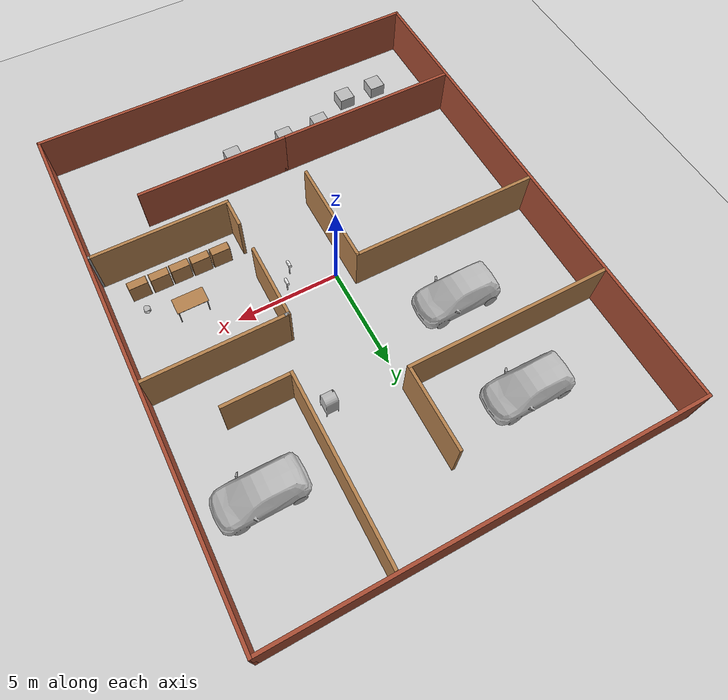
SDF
<sdf version="1.6">
 <world name="default">
  <light name="sun" type="directional">
   <pose>0 0 10 0 -0 0</pose>
   <diffuse>0.8 0.8 0.8 1</diffuse>
   <specular>0.2 0.2 0.2 1</specular>
   <attenuation>
    <range>1000</range>
    <constant>0.9</constant>
    <linear>0.01</linear>
    <quadratic>0.001</quadratic>
   </attenuation>
   <direction>-0.5 0.1 -0.9</direction>
  </light>
  <model name="ground_plane">
   <static>1</static>
   <link name="link">
    <collision name="collision">
     <geometry><plane><normal>0 0 1</normal><size>100 100</size></plane></geometry>
     <surface>
      <contact><collide_bitmask>65535</collide_bitmask></contact>
      <friction><ode><mu>100</mu><mu2>50</mu2></ode></friction>
     </surface>
    </collision>
    <visual name="visual">
     <cast_shadows>0</cast_shadows>
     <geometry><plane><normal>0 0 1</normal><size>100 100</size></plane></geometry>
     <material>
      <script><uri>file://media/materials/scripts/gazebo.material</uri><name>Gazebo/Grey</name></script>
     </material>
    </visual>
   </link>
  </model>
  <gravity>0 0 -9.8</gravity>
  <magnetic_field>6e-06 2.3e-05 -4.2e-05</magnetic_field>
  <atmosphere type="adiabatic"/>
  <physics name="default_physics" default="0" type="ode">
   <max_step_size>0.001</max_step_size>
   <real_time_factor>1</real_time_factor>
   <real_time_update_rate>1000</real_time_update_rate>
  </physics>
  <scene><ambient>0.4 0.4 0.4 1</ambient><background>0.7 0.7 0.7 1</background><shadows>1</shadows></scene>
  <audio><device>default</device></audio>
  <spherical_coordinates>
   <surface_model>EARTH_WGS84</surface_model>
   <latitude_deg>0</latitude_deg>
   <longitude_deg>0</longitude_deg>
   <elevation>0</elevation>
   <heading_deg>0</heading_deg>
  </spherical_coordinates>
  <model name="Condominium">
   <model name="kindacondo">
    <model name="Mailbox">
     <link name="link">
      <collision name="collision">
       <geometry><mesh><uri>model://mailbox/meshes/mailbox.dae</uri></mesh></geometry>
      </collision>
      <visual name="visual">
       <geometry><mesh><uri>model://mailbox/meshes/mailbox.dae</uri></mesh></geometry>
       <material>
        <script>
         <uri>model://mailbox/materials/scripts</uri>
         <uri>model://mailbox/materials/textures</uri>
         <name>Mailbox/Diffuse</name>
        </script>
       </material>
      </visual>
      <inertial>
       <inertia><ixx>1</ixx><ixy>0</ixy><ixz>0</ixz><iyy>1</iyy><iyz>0</iyz><izz>1</izz></inertia>
       <mass>1</mass>
      </inertial>
     </link>
     <pose>0.404957 3.99025 -0.18 0 -0 0</pose>
    </model>
    <model name="bookshelf">
     <static>1</static>
     <link name="link">
      <inertial><mass>1</mass></inertial>
      <collision name="back">
       <pose>0 0.005 0.6 0 -0 0</pose>
       <geometry><box><size>0.9 0.01 1.2</size></box></geometry>
      </collision>
      <visual name="visual1">
       <pose>0 0.005 0.6 0 -0 0</pose>
       <geometry><box><size>0.9 0.01 1.2</size></box></geometry>
       <material>
        <script><uri>file://media/materials/scripts/gazebo.material</uri><name>Gazebo/Wood</name></script>
       </material>
      </visual>
      <collision name="left_side">
       <pose>0.45 -0.195 0.6 0 -0 0</pose>
       <geometry><box><size>0.02 0.4 1.2</size></box></geometry>
      </collision>
      <visual name="visual2">
       <pose>0.45 -0.195 0.6 0 -0 0</pose>
       <geometry><box><size>0.02 0.4 1.2</size></box></geometry>
       <material>
        <script><uri>file://media/materials/scripts/gazebo.material</uri><name>Gazebo/Wood</name></script>
       </material>
      </visual>
      <collision name="right_side">
       <pose>-0.45 -0.195 0.6 0 -0 0</pose>
       <geometry><box><size>0.02 0.4 1.2</size></box></geometry>
      </collision>
      <visual name="visual3">
       <pose>-0.45 -0.195 0.6 0 -0 0</pose>
       <geometry><box><size>0.02 0.4 1.2</size></box></geometry>
       <material>
        <script><uri>file://media/materials/scripts/gazebo.material</uri><name>Gazebo/Wood</name></script>
       </material>
      </visual>
      <collision name="bottom">
       <pose>0 -0.195 0.03 0 -0 0</pose>
       <geometry><box><size>0.88 0.4 0.06</size></box></geometry>
      </collision>
      <visual name="visual4">
       <pose>0 -0.195 0.03 0 -0 0</pose>
       <geometry><box><size>0.88 0.4 0.06</size></box></geometry>
       <material>
        <script><uri>file://media/materials/scripts/gazebo.material</uri><name>Gazebo/Wood</name></script>
       </material>
      </visual>
      <collision name="top">
       <pose>0 -0.195 1.19 0 -0 0</pose>
       <geometry><box><size>0.88 0.4 0.02</size></box></geometry>
      </collision>
      <visual name="visual5">
       <pose>0 -0.195 1.19 0 -0 0</pose>
       <geometry><box><size>0.88 0.4 0.02</size></box></geometry>
       <material>
        <script><uri>file://media/materials/scripts/gazebo.material</uri><name>Gazebo/Wood</name></script>
       </material>
      </visual>
      <collision name="low_shelf">
       <pose>0 -0.195 0.43 0 -0 0</pose>
       <geometry><box><size>0.88 0.4 0.02</size></box></geometry>
      </collision>
      <visual name="visual6">
       <pose>0 -0.195 0.43 0 -0 0</pose>
       <geometry><box><size>0.88 0.4 0.02</size></box></geometry>
       <material>
        <script><uri>file://media/materials/scripts/gazebo.material</uri><name>Gazebo/Wood</name></script>
       </material>
      </visual>
      <collision name="high_shelf">
       <pose>0 -0.195 0.8 0 -0 0</pose>
       <geometry><box><size>0.88 0.4 0.02</size></box></geometry>
      </collision>
      <visual name="visual7">
       <pose>0 -0.195 0.8 0 -0 0</pose>
       <geometry><box><size>0.88 0.4 0.02</size></box></geometry>
       <material>
        <script><uri>file://media/materials/scripts/gazebo.material</uri><name>Gazebo/Wood</name></script>
       </material>
      </visual>
     </link>
     <pose>6.48985 1.28385 -0.18 0 -0 0</pose>
    </model>
    <model name="bookshelf_0">
     <static>1</static>
     <link name="link">
      <inertial><mass>1</mass></inertial>
      <collision name="back">
       <pose>0 0.005 0.6 0 -0 0</pose>
       <geometry><box><size>0.9 0.01 1.2</size></box></geometry>
      </collision>
      <visual name="visual1">
       <pose>0 0.005 0.6 0 -0 0</pose>
       <geometry><box><size>0.9 0.01 1.2</size></box></geometry>
       <material>
        <script><uri>file://media/materials/scripts/gazebo.material</uri><name>Gazebo/Wood</name></script>
       </material>
      </visual>
      <collision name="left_side">
       <pose>0.45 -0.195 0.6 0 -0 0</pose>
       <geometry><box><size>0.02 0.4 1.2</size></box></geometry>
      </collision>
      <visual name="visual2">
       <pose>0.45 -0.195 0.6 0 -0 0</pose>
       <geometry><box><size>0.02 0.4 1.2</size></box></geometry>
       <material>
        <script><uri>file://media/materials/scripts/gazebo.material</uri><name>Gazebo/Wood</name></script>
       </material>
      </visual>
      <collision name="right_side">
       <pose>-0.45 -0.195 0.6 0 -0 0</pose>
       <geometry><box><size>0.02 0.4 1.2</size></box></geometry>
      </collision>
      <visual name="visual3">
       <pose>-0.45 -0.195 0.6 0 -0 0</pose>
       <geometry><box><size>0.02 0.4 1.2</size></box></geometry>
       <material>
        <script><uri>file://media/materials/scripts/gazebo.material</uri><name>Gazebo/Wood</name></script>
       </material>
      </visual>
      <collision name="bottom">
       <pose>0 -0.195 0.03 0 -0 0</pose>
       <geometry><box><size>0.88 0.4 0.06</size></box></geometry>
      </collision>
      <visual name="visual4">
       <pose>0 -0.195 0.03 0 -0 0</pose>
       <geometry><box><size>0.88 0.4 0.06</size></box></geometry>
       <material>
        <script><uri>file://media/materials/scripts/gazebo.material</uri><name>Gazebo/Wood</name></script>
       </material>
      </visual>
      <collision name="top">
       <pose>0 -0.195 1.19 0 -0 0</pose>
       <geometry><box><size>0.88 0.4 0.02</size></box></geometry>
      </collision>
      <visual name="visual5">
       <pose>0 -0.195 1.19 0 -0 0</pose>
       <geometry><box><size>0.88 0.4 0.02</size></box></geometry>
       <material>
        <script><uri>file://media/materials/scripts/gazebo.material</uri><name>Gazebo/Wood</name></script>
       </material>
      </visual>
      <collision name="low_shelf">
       <pose>0 -0.195 0.43 0 -0 0</pose>
       <geometry><box><size>0.88 0.4 0.02</size></box></geometry>
      </collision>
      <visual name="visual6">
       <pose>0 -0.195 0.43 0 -0 0</pose>
       <geometry><box><size>0.88 0.4 0.02</size></box></geometry>
       <material>
        <script><uri>file://media/materials/scripts/gazebo.material</uri><name>Gazebo/Wood</name></script>
       </material>
      </visual>
      <collision name="high_shelf">
       <pose>0 -0.195 0.8 0 -0 0</pose>
       <geometry><box><size>0.88 0.4 0.02</size></box></geometry>
      </collision>
      <visual name="visual7">
       <pose>0 -0.195 0.8 0 -0 0</pose>
       <geometry><box><size>0.88 0.4 0.02</size></box></geometry>
       <material>
        <script><uri>file://media/materials/scripts/gazebo.material</uri><name>Gazebo/Wood</name></script>
       </material>
      </visual>
     </link>
     <pose>5.46009 1.30244 -0.18 0 -0 0</pose>
    </model>
    <model name="bookshelf_1">
     <static>1</static>
     <link name="link">
      <inertial><mass>1</mass></inertial>
      <collision name="back">
       <pose>0 0.005 0.6 0 -0 0</pose>
       <geometry><box><size>0.9 0.01 1.2</size></box></geometry>
      </collision>
      <visual name="visual1">
       <pose>0 0.005 0.6 0 -0 0</pose>
       <geometry><box><size>0.9 0.01 1.2</size></box></geometry>
       <material>
        <script><uri>file://media/materials/scripts/gazebo.material</uri><name>Gazebo/Wood</name></script>
       </material>
      </visual>
      <collision name="left_side">
       <pose>0.45 -0.195 0.6 0 -0 0</pose>
       <geometry><box><size>0.02 0.4 1.2</size></box></geometry>
      </collision>
      <visual name="visual2">
       <pose>0.45 -0.195 0.6 0 -0 0</pose>
       <geometry><box><size>0.02 0.4 1.2</size></box></geometry>
       <material>
        <script><uri>file://media/materials/scripts/gazebo.material</uri><name>Gazebo/Wood</name></script>
       </material>
      </visual>
      <collision name="right_side">
       <pose>-0.45 -0.195 0.6 0 -0 0</pose>
       <geometry><box><size>0.02 0.4 1.2</size></box></geometry>
      </collision>
      <visual name="visual3">
       <pose>-0.45 -0.195 0.6 0 -0 0</pose>
       <geometry><box><size>0.02 0.4 1.2</size></box></geometry>
       <material>
        <script><uri>file://media/materials/scripts/gazebo.material</uri><name>Gazebo/Wood</name></script>
       </material>
      </visual>
      <collision name="bottom">
       <pose>0 -0.195 0.03 0 -0 0</pose>
       <geometry><box><size>0.88 0.4 0.06</size></box></geometry>
      </collision>
      <visual name="visual4">
       <pose>0 -0.195 0.03 0 -0 0</pose>
       <geometry><box><size>0.88 0.4 0.06</size></box></geometry>
       <material>
        <script><uri>file://media/materials/scripts/gazebo.material</uri><name>Gazebo/Wood</name></script>
       </material>
      </visual>
      <collision name="top">
       <pose>0 -0.195 1.19 0 -0 0</pose>
       <geometry><box><size>0.88 0.4 0.02</size></box></geometry>
      </collision>
      <visual name="visual5">
       <pose>0 -0.195 1.19 0 -0 0</pose>
       <geometry><box><size>0.88 0.4 0.02</size></box></geometry>
       <material>
        <script><uri>file://media/materials/scripts/gazebo.material</uri><name>Gazebo/Wood</name></script>
       </material>
      </visual>
      <collision name="low_shelf">
       <pose>0 -0.195 0.43 0 -0 0</pose>
       <geometry><box><size>0.88 0.4 0.02</size></box></geometry>
      </collision>
      <visual name="visual6">
       <pose>0 -0.195 0.43 0 -0 0</pose>
       <geometry><box><size>0.88 0.4 0.02</size></box></geometry>
       <material>
        <script><uri>file://media/materials/scripts/gazebo.material</uri><name>Gazebo/Wood</name></script>
       </material>
      </visual>
      <collision name="high_shelf">
       <pose>0 -0.195 0.8 0 -0 0</pose>
       <geometry><box><size>0.88 0.4 0.02</size></box></geometry>
      </collision>
      <visual name="visual7">
       <pose>0 -0.195 0.8 0 -0 0</pose>
       <geometry><box><size>0.88 0.4 0.02</size></box></geometry>
       <material>
        <script><uri>file://media/materials/scripts/gazebo.material</uri><name>Gazebo/Wood</name></script>
       </material>
      </visual>
     </link>
     <pose>4.46436 1.29452 -0.18 0 -0 0</pose>
    </model>
    <model name="bookshelf_2">
     <static>1</static>
     <link name="link">
      <inertial><mass>1</mass></inertial>
      <collision name="back">
       <pose>0 0.005 0.6 0 -0 0</pose>
       <geometry><box><size>0.9 0.01 1.2</size></box></geometry>
      </collision>
      <visual name="visual1">
       <pose>0 0.005 0.6 0 -0 0</pose>
       <geometry><box><size>0.9 0.01 1.2</size></box></geometry>
       <material>
        <script><uri>file://media/materials/scripts/gazebo.material</uri><name>Gazebo/Wood</name></script>
       </material>
      </visual>
      <collision name="left_side">
       <pose>0.45 -0.195 0.6 0 -0 0</pose>
       <geometry><box><size>0.02 0.4 1.2</size></box></geometry>
      </collision>
      <visual name="visual2">
       <pose>0.45 -0.195 0.6 0 -0 0</pose>
       <geometry><box><size>0.02 0.4 1.2</size></box></geometry>
       <material>
        <script><uri>file://media/materials/scripts/gazebo.material</uri><name>Gazebo/Wood</name></script>
       </material>
      </visual>
      <collision name="right_side">
       <pose>-0.45 -0.195 0.6 0 -0 0</pose>
       <geometry><box><size>0.02 0.4 1.2</size></box></geometry>
      </collision>
      <visual name="visual3">
       <pose>-0.45 -0.195 0.6 0 -0 0</pose>
       <geometry><box><size>0.02 0.4 1.2</size></box></geometry>
       <material>
        <script><uri>file://media/materials/scripts/gazebo.material</uri><name>Gazebo/Wood</name></script>
       </material>
      </visual>
      <collision name="bottom">
       <pose>0 -0.195 0.03 0 -0 0</pose>
       <geometry><box><size>0.88 0.4 0.06</size></box></geometry>
      </collision>
      <visual name="visual4">
       <pose>0 -0.195 0.03 0 -0 0</pose>
       <geometry><box><size>0.88 0.4 0.06</size></box></geometry>
       <material>
        <script><uri>file://media/materials/scripts/gazebo.material</uri><name>Gazebo/Wood</name></script>
       </material>
      </visual>
      <collision name="top">
       <pose>0 -0.195 1.19 0 -0 0</pose>
       <geometry><box><size>0.88 0.4 0.02</size></box></geometry>
      </collision>
      <visual name="visual5">
       <pose>0 -0.195 1.19 0 -0 0</pose>
       <geometry><box><size>0.88 0.4 0.02</size></box></geometry>
       <material>
        <script><uri>file://media/materials/scripts/gazebo.material</uri><name>Gazebo/Wood</name></script>
       </material>
      </visual>
      <collision name="low_shelf">
       <pose>0 -0.195 0.43 0 -0 0</pose>
       <geometry><box><size>0.88 0.4 0.02</size></box></geometry>
      </collision>
      <visual name="visual6">
       <pose>0 -0.195 0.43 0 -0 0</pose>
       <geometry><box><size>0.88 0.4 0.02</size></box></geometry>
       <material>
        <script><uri>file://media/materials/scripts/gazebo.material</uri><name>Gazebo/Wood</name></script>
       </material>
      </visual>
      <collision name="high_shelf">
       <pose>0 -0.195 0.8 0 -0 0</pose>
       <geometry><box><size>0.88 0.4 0.02</size></box></geometry>
      </collision>
      <visual name="visual7">
       <pose>0 -0.195 0.8 0 -0 0</pose>
       <geometry><box><size>0.88 0.4 0.02</size></box></geometry>
       <material>
        <script><uri>file://media/materials/scripts/gazebo.material</uri><name>Gazebo/Wood</name></script>
       </material>
      </visual>
     </link>
     <pose>3.4728 1.31415 -0.18 0 -0 0</pose>
    </model>
    <model name="bookshelf_3">
     <static>1</static>
     <link name="link">
      <inertial><mass>1</mass></inertial>
      <collision name="back">
       <pose>0 0.005 0.6 0 -0 0</pose>
       <geometry><box><size>0.9 0.01 1.2</size></box></geometry>
      </collision>
      <visual name="visual1">
       <pose>0 0.005 0.6 0 -0 0</pose>
       <geometry><box><size>0.9 0.01 1.2</size></box></geometry>
       <material>
        <script><uri>file://media/materials/scripts/gazebo.material</uri><name>Gazebo/Wood</name></script>
       </material>
      </visual>
      <collision name="left_side">
       <pose>0.45 -0.195 0.6 0 -0 0</pose>
       <geometry><box><size>0.02 0.4 1.2</size></box></geometry>
      </collision>
      <visual name="visual2">
       <pose>0.45 -0.195 0.6 0 -0 0</pose>
       <geometry><box><size>0.02 0.4 1.2</size></box></geometry>
       <material>
        <script><uri>file://media/materials/scripts/gazebo.material</uri><name>Gazebo/Wood</name></script>
       </material>
      </visual>
      <collision name="right_side">
       <pose>-0.45 -0.195 0.6 0 -0 0</pose>
       <geometry><box><size>0.02 0.4 1.2</size></box></geometry>
      </collision>
      <visual name="visual3">
       <pose>-0.45 -0.195 0.6 0 -0 0</pose>
       <geometry><box><size>0.02 0.4 1.2</size></box></geometry>
       <material>
        <script><uri>file://media/materials/scripts/gazebo.material</uri><name>Gazebo/Wood</name></script>
       </material>
      </visual>
      <collision name="bottom">
       <pose>0 -0.195 0.03 0 -0 0</pose>
       <geometry><box><size>0.88 0.4 0.06</size></box></geometry>
      </collision>
      <visual name="visual4">
       <pose>0 -0.195 0.03 0 -0 0</pose>
       <geometry><box><size>0.88 0.4 0.06</size></box></geometry>
       <material>
        <script><uri>file://media/materials/scripts/gazebo.material</uri><name>Gazebo/Wood</name></script>
       </material>
      </visual>
      <collision name="top">
       <pose>0 -0.195 1.19 0 -0 0</pose>
       <geometry><box><size>0.88 0.4 0.02</size></box></geometry>
      </collision>
      <visual name="visual5">
       <pose>0 -0.195 1.19 0 -0 0</pose>
       <geometry><box><size>0.88 0.4 0.02</size></box></geometry>
       <material>
        <script><uri>file://media/materials/scripts/gazebo.material</uri><name>Gazebo/Wood</name></script>
       </material>
      </visual>
      <collision name="low_shelf">
       <pose>0 -0.195 0.43 0 -0 0</pose>
       <geometry><box><size>0.88 0.4 0.02</size></box></geometry>
      </collision>
      <visual name="visual6">
       <pose>0 -0.195 0.43 0 -0 0</pose>
       <geometry><box><size>0.88 0.4 0.02</size></box></geometry>
       <material>
        <script><uri>file://media/materials/scripts/gazebo.material</uri><name>Gazebo/Wood</name></script>
       </material>
      </visual>
      <collision name="high_shelf">
       <pose>0 -0.195 0.8 0 -0 0</pose>
       <geometry><box><size>0.88 0.4 0.02</size></box></geometry>
      </collision>
      <visual name="visual7">
       <pose>0 -0.195 0.8 0 -0 0</pose>
       <geometry><box><size>0.88 0.4 0.02</size></box></geometry>
       <material>
        <script><uri>file://media/materials/scripts/gazebo.material</uri><name>Gazebo/Wood</name></script>
       </material>
      </visual>
     </link>
     <pose>2.47819 1.31424 -0.18 0 -0 0</pose>
    </model>
    <model name="number1">
     <pose>-9.19657 -5.12293 0.22 0 -0 0</pose>
     <static>1</static>
     <link name="link">
      <visual name="visual">
       <geometry><mesh><uri>model://number1/meshes/number.dae</uri></mesh></geometry>
       <material>
        <script>
         <uri>model://number1/materials/scripts</uri>
         <uri>model://number1/materials/textures</uri>
         <name>Number/One</name>
        </script>
       </material>
      </visual>
     </link>
    </model>
    <model name="number2">
     <pose>-7.3539 -5.10785 0.22 0 -0 0</pose>
     <static>1</static>
     <link name="link">
      <visual name="visual">
       <geometry><mesh><uri>model://number1/meshes/number.dae</uri></mesh></geometry>
       <material>
        <script>
         <uri>model://number2/materials/scripts</uri>
         <uri>model://number2/materials/textures</uri>
         <name>Number/Two</name>
        </script>
       </material>
      </visual>
     </link>
    </model>
    <model name="number3">
     <pose>-6.4598 -3.12093 0.22 0 -0 0</pose>
     <static>1</static>
     <link name="link">
      <visual name="visual">
       <geometry><mesh><uri>model://number1/meshes/number.dae</uri></mesh></geometry>
       <material>
        <script>
         <uri>model://number3/materials/scripts</uri>
         <uri>model://number3/materials/textures</uri>
         <name>Number/Three</name>
        </script>
       </material>
      </visual>
     </link>
    </model>
    <model name="number4">
     <pose>-5.38091 -4.12011 0.22 0 -0 0</pose>
     <static>1</static>
     <link name="link">
      <visual name="visual">
       <geometry><mesh><uri>model://number1/meshes/number.dae</uri></mesh></geometry>
       <material>
        <script>
         <uri>model://number4/materials/scripts</uri>
         <uri>model://number4/materials/textures</uri>
         <name>Number/Four</name>
        </script>
       </material>
      </visual>
     </link>
    </model>
    <model name="number5">
     <pose>-4.28103 -3.14151 0.22 0 -0 0</pose>
     <static>1</static>
     <link name="link">
      <visual name="visual">
       <geometry><mesh><uri>model://number1/meshes/number.dae</uri></mesh></geometry>
       <material>
        <script>
         <uri>model://number5/materials/scripts</uri>
         <uri>model://number5/materials/textures</uri>
         <name>Number/Five</name>
        </script>
       </material>
      </visual>
     </link>
    </model>
    <model name="number6">
     <pose>-3.33318 -4.07223 0.22 0 -0 0</pose>
     <static>1</static>
     <link name="link">
      <visual name="visual">
       <geometry><mesh><uri>model://number1/meshes/number.dae</uri></mesh></geometry>
       <material>
        <script>
         <uri>model://number6/materials/scripts</uri>
         <uri>model://number6/materials/textures</uri>
         <name>Number/Six</name>
        </script>
       </material>
      </visual>
     </link>
    </model>
    <model name="number7">
     <pose>-2.39549 -3.22243 0.22 0 -0 0</pose>
     <static>1</static>
     <link name="link">
      <visual name="visual">
       <geometry><mesh><uri>model://number1/meshes/number.dae</uri></mesh></geometry>
       <material>
        <script>
         <uri>model://number7/materials/scripts</uri>
         <uri>model://number7/materials/textures</uri>
         <name>Number/Seven</name>
        </script>
       </material>
      </visual>
     </link>
    </model>
    <model name="number8">
     <pose>-1.36464 -3.18365 0.22 0 -0 0</pose>
     <static>1</static>
     <link name="link">
      <visual name="visual">
       <geometry><mesh><uri>model://number1/meshes/number.dae</uri></mesh></geometry>
       <material>
        <script>
         <uri>model://number8/materials/scripts</uri>
         <uri>model://number8/materials/textures</uri>
         <name>Number/Eight</name>
        </script>
       </material>
      </visual>
     </link>
    </model>
    <model name="number9">
     <pose>-0.432188 -4.12964 0.22 0 -0 0</pose>
     <static>1</static>
     <link name="link">
      <visual name="visual">
       <geometry><mesh><uri>model://number1/meshes/number.dae</uri></mesh></geometry>
       <material>
        <script>
         <uri>model://number9/materials/scripts</uri>
         <uri>model://number9/materials/textures</uri>
         <name>Number/Nine</name>
        </script>
       </material>
      </visual>
     </link>
    </model>
    <model name="postbox">
     <static>1</static>
     <link name="link">
      <collision name="collision">
       <geometry><mesh><uri>model://postbox/meshes/postbox.dae</uri></mesh></geometry>
      </collision>
      <visual name="visual"><geometry><mesh><uri>model://postbox/meshes/postbox.dae</uri></mesh></geometry></visual>
     </link>
     <pose>1.31892 10.0386 -0.18 0 -0 0</pose>
    </model>
    <model name="table">
     <static>1</static>
     <link name="link">
      <collision name="surface">
       <pose>0 0 1 0 -0 0</pose>
       <geometry><box><size>1.5 0.8 0.03</size></box></geometry>
       <surface><friction><ode><mu>0.6</mu><mu2>0.6</mu2></ode></friction></surface>
      </collision>
      <visual name="visual1">
       <pose>0 0 1 0 -0 0</pose>
       <geometry><box><size>1.5 0.8 0.03</size></box></geometry>
       <material>
        <script><uri>file://media/materials/scripts/gazebo.material</uri><name>Gazebo/Wood</name></script>
       </material>
      </visual>
      <collision name="front_left_leg">
       <pose>0.68 0.38 0.5 0 -0 0</pose>
       <geometry><cylinder><radius>0.02</radius><length>1</length></cylinder></geometry>
      </collision>
      <visual name="front_left_leg">
       <pose>0.68 0.38 0.5 0 -0 0</pose>
       <geometry><cylinder><radius>0.02</radius><length>1</length></cylinder></geometry>
       <material>
        <script><uri>file://media/materials/scripts/gazebo.material</uri><name>Gazebo/Grey</name></script>
       </material>
      </visual>
      <collision name="front_right_leg">
       <pose>0.68 -0.38 0.5 0 -0 0</pose>
       <geometry><cylinder><radius>0.02</radius><length>1</length></cylinder></geometry>
      </collision>
      <visual name="front_right_leg">
       <pose>0.68 -0.38 0.5 0 -0 0</pose>
       <geometry><cylinder><radius>0.02</radius><length>1</length></cylinder></geometry>
       <material>
        <script><uri>file://media/materials/scripts/gazebo.material</uri><name>Gazebo/Grey</name></script>
       </material>
      </visual>
      <collision name="back_right_leg">
       <pose>-0.68 -0.38 0.5 0 -0 0</pose>
       <geometry><cylinder><radius>0.02</radius><length>1</length></cylinder></geometry>
      </collision>
      <visual name="back_right_leg">
       <pose>-0.68 -0.38 0.5 0 -0 0</pose>
       <geometry><cylinder><radius>0.02</radius><length>1</length></cylinder></geometry>
       <material>
        <script><uri>file://media/materials/scripts/gazebo.material</uri><name>Gazebo/Grey</name></script>
       </material>
      </visual>
      <collision name="back_left_leg">
       <pose>-0.68 0.38 0.5 0 -0 0</pose>
       <geometry><cylinder><radius>0.02</radius><length>1</length></cylinder></geometry>
      </collision>
      <visual name="back_left_leg">
       <pose>-0.68 0.38 0.5 0 -0 0</pose>
       <geometry><cylinder><radius>0.02</radius><length>1</length></cylinder></geometry>
       <material>
        <script><uri>file://media/materials/scripts/gazebo.material</uri><name>Gazebo/Grey</name></script>
       </material>
      </visual>
     </link>
     <pose>4.68201 2.91634 -0.18 0 -0 0</pose>
    </model>
    <model name="turtlebot">
     <link name="rack">
      <inertial>
       <pose>0.001453 -0.000453 0.029787 0 -0 0</pose>
       <inertia>
        <ixx>0.05864</ixx>
        <ixy>0.000124</ixy>
        <ixz>0.000615</ixz>
        <iyy>0.058786</iyy>
        <iyz>1.4e-05</iyz>
        <izz>1.53244</izz>
       </inertia>
       <mass>2.234</mass>
      </inertial>
      <collision name="plate_0_collision">
       <pose>-0.04334 0 0.084757 0 -0 0</pose>
       <geometry><box><size>0.233502 0.314845 0.006401</size></box></geometry>
      </collision>
      <visual name="plate_0_visual">
       <pose>-0.04334 0 0.084757 0 -0 0</pose>
       <geometry><mesh><uri>model://turtlebot/meshes/plate_0_logo.dae</uri></mesh></geometry>
      </visual>
      <collision name="plate_1_collision">
       <pose>-0.00266 0 0.141907 0 -0 0</pose>
       <geometry><box><size>0.314856 0.314856 0.006401</size></box></geometry>
      </collision>
      <visual name="plate_1_visual">
       <pose>-0.00266 0 0.141907 0 -0 0</pose>
       <geometry><mesh><uri>model://turtlebot/meshes/plate_1_logo.dae</uri></mesh></geometry>
      </visual>
      <collision name="plate_2_collision">
       <pose>-0.00266 0 0.199108 0 -0 0</pose>
       <geometry><box><size>0.314856 0.314856 0.006401</size></box></geometry>
      </collision>
      <visual name="plate_2_visual">
       <pose>-0.00266 0 0.199108 0 -0 0</pose>
       <geometry><mesh><uri>model://turtlebot/meshes/plate_1_logo.dae</uri></mesh></geometry>
      </visual>
      <collision name="plate_3_collision">
       <pose>-0.01582 0 0.405457 0 -0 0</pose>
       <geometry><box><size>0.288 0.315 0.006401</size></box></geometry>
      </collision>
      <visual name="plate_3_visual">
       <pose>-0.01582 0 0.405457 0 -0 0</pose>
       <geometry><mesh><uri>model://turtlebot/meshes/plate_2_logo.dae</uri></mesh></geometry>
      </visual>
      <collision name="spacer_0_collision">
       <pose>-0.00254 0.111468 0.079992 0 -0 0</pose>
       <geometry><cylinder><radius>0.0127</radius><length>0.003175</length></cylinder></geometry>
      </collision>
      <visual name="spacer_0_visual">
       <pose>-0.00254 0.111468 0.079992 0 -0 0</pose>
       <geometry><mesh><uri>model://turtlebot/meshes/68-02403-125_Spacer.dae</uri></mesh></geometry>
      </visual>
      <collision name="spacer_1_collision">
       <pose>-0.00254 -0.111468 0.079992 0 -0 0</pose>
       <geometry><cylinder><radius>0.0127</radius><length>0.003175</length></cylinder></geometry>
      </collision>
      <visual name="spacer_1_visual">
       <pose>-0.00254 -0.111468 0.079992 0 -0 0</pose>
       <geometry><mesh><uri>model://turtlebot/meshes/68-02403-125_Spacer.dae</uri></mesh></geometry>
      </visual>
      <collision name="spacer_2_collision">
       <pose>-0.07239 -0.111468 0.079992 0 -0 0</pose>
       <geometry><cylinder><radius>0.0127</radius><length>0.003175</length></cylinder></geometry>
      </collision>
      <visual name="spacer_2_visual">
       <pose>-0.07239 -0.111468 0.079992 0 -0 0</pose>
       <geometry><mesh><uri>model://turtlebot/meshes/68-02403-125_Spacer.dae</uri></mesh></geometry>
      </visual>
      <collision name="spacer_3_collision">
       <pose>-0.07239 0.111468 0.079992 0 -0 0</pose>
       <geometry><cylinder><radius>0.0127</radius><length>0.003175</length></cylinder></geometry>
      </collision>
      <visual name="spacer_3_visual">
       <pose>-0.07239 0.111468 0.079992 0 -0 0</pose>
       <geometry><mesh><uri>model://turtlebot/meshes/68-02403-125_Spacer.dae</uri></mesh></geometry>
      </visual>
      <collision name="standoff_2in_0_collision">
       <pose>0.06764 0.13142 0.08798 0 -0 0</pose>
       <geometry><cylinder><radius>0.0381</radius><length>0.0635</length></cylinder></geometry>
      </collision>
      <visual name="standoff_2in_0_visual">
       <pose>0.06764 0.13142 0.08798 0 -0 0</pose>
       <geometry>
        <mesh><uri>model://turtlebot/meshes/68-04552-2000-RA_Turtlebot_M-F_Standoff.dae</uri></mesh>
       </geometry>
      </visual>
      <collision name="standoff_2in_1_collision">
       <pose>0.06764 -0.13142 0.08798 0 -0 0</pose>
       <geometry><cylinder><radius>0.0381</radius><length>0.0635</length></cylinder></geometry>
      </collision>
      <visual name="standoff_2in_1_visual">
       <pose>0.06764 -0.13142 0.08798 0 -0 0</pose>
       <geometry>
        <mesh><uri>model://turtlebot/meshes/68-04552-2000-RA_Turtlebot_M-F_Standoff.dae</uri></mesh>
       </geometry>
      </visual>
      <collision name="standoff_2in_2_collision">
       <pose>-0.052832 -0.13142 0.08798 0 -0 0</pose>
       <geometry><cylinder><radius>0.0381</radius><length>0.0635</length></cylinder></geometry>
      </collision>
      <visual name="standoff_2in_2_visual">
       <pose>-0.052832 -0.13142 0.08798 0 -0 0</pose>
       <geometry>
        <mesh><uri>model://turtlebot/meshes/68-04552-2000-RA_Turtlebot_M-F_Standoff.dae</uri></mesh>
       </geometry>
      </visual>
      <collision name="standoff_2in_3_collision">
       <pose>-0.052832 0.13142 0.08798 0 -0 0</pose>
       <geometry><cylinder><radius>0.0381</radius><length>0.0635</length></cylinder></geometry>
      </collision>
      <visual name="standoff_2in_3_visual">
       <pose>-0.052832 0.13142 0.08798 0 -0 0</pose>
       <geometry>
        <mesh><uri>model://turtlebot/meshes/68-04552-2000-RA_Turtlebot_M-F_Standoff.dae</uri></mesh>
       </geometry>
      </visual>
      <collision name="standoff_2in_4_collision">
       <pose>0.06764 0.13142 0.14513 0 -0 0</pose>
       <geometry><cylinder><radius>0.0381</radius><length>0.0635</length></cylinder></geometry>
      </collision>
      <visual name="standoff_2in_4_visual">
       <pose>0.06764 0.13142 0.14513 0 -0 0</pose>
       <geometry>
        <mesh><uri>model://turtlebot/meshes/68-04552-2000-RA_Turtlebot_M-F_Standoff.dae</uri></mesh>
       </geometry>
      </visual>
      <collision name="standoff_2in_5_collision">
       <pose>0.06764 -0.13142 0.14513 0 -0 0</pose>
       <geometry><cylinder><radius>0.0381</radius><length>0.0635</length></cylinder></geometry>
      </collision>
      <visual name="standoff_2in_5_visual">
       <pose>0.06764 -0.13142 0.14513 0 -0 0</pose>
       <geometry>
        <mesh><uri>model://turtlebot/meshes/68-04552-2000-RA_Turtlebot_M-F_Standoff.dae</uri></mesh>
       </geometry>
      </visual>
      <collision name="standoff_2in_6_collision">
       <pose>-0.052832 -0.13142 0.14513 0 -0 0</pose>
       <geometry><cylinder><radius>0.0381</radius><length>0.0635</length></cylinder></geometry>
      </collision>
      <visual name="standoff_2in_6_visual">
       <pose>-0.052832 -0.13142 0.14513 0 -0 0</pose>
       <geometry>
        <mesh><uri>model://turtlebot/meshes/68-04552-2000-RA_Turtlebot_M-F_Standoff.dae</uri></mesh>
       </geometry>
      </visual>
      <collision name="standoff_2in_7_collision">
       <pose>-0.052832 0.13142 0.14513 0 -0 0</pose>
       <geometry><cylinder><radius>0.0381</radius><length>0.0635</length></cylinder></geometry>
      </collision>
      <visual name="standoff_2in_7_visual">
       <pose>-0.052832 0.13142 0.14513 0 -0 0</pose>
       <geometry>
        <mesh><uri>model://turtlebot/meshes/68-04552-2000-RA_Turtlebot_M-F_Standoff.dae</uri></mesh>
       </geometry>
      </visual>
      <collision name="standoff_8in_0_collision">
       <pose>0.06764 0.13142 0.20228 0 -0 0</pose>
       <geometry><cylinder><radius>0.011113</radius><length>0.2032</length></cylinder></geometry>
      </collision>
      <visual name="standoff_8in_0_visual">
       <pose>0.06764 0.13142 0.20228 0 -0 0</pose>
       <geometry>
        <mesh><uri>model://turtlebot/meshes/68-02421-8000-RA_Turtlebot_F-F_Standoff.dae</uri></mesh>
       </geometry>
      </visual>
      <collision name="standoff_8in_1_collision">
       <pose>0.06764 -0.13142 0.20228 0 -0 0</pose>
       <geometry><cylinder><radius>0.011113</radius><length>0.2032</length></cylinder></geometry>
      </collision>
      <visual name="standoff_8in_1_visual">
       <pose>0.06764 -0.13142 0.20228 0 -0 0</pose>
       <geometry>
        <mesh><uri>model://turtlebot/meshes/68-02421-8000-RA_Turtlebot_F-F_Standoff.dae</uri></mesh>
       </geometry>
      </visual>
      <collision name="standoff_8in_2_collision">
       <pose>-0.052832 -0.13142 0.20228 0 -0 0</pose>
       <geometry><cylinder><radius>0.011113</radius><length>0.2032</length></cylinder></geometry>
      </collision>
      <visual name="standoff_8in_2_visual">
       <pose>-0.052832 -0.13142 0.20228 0 -0 0</pose>
       <geometry>
        <mesh><uri>model://turtlebot/meshes/68-02421-8000-RA_Turtlebot_F-F_Standoff.dae</uri></mesh>
       </geometry>
      </visual>
      <collision name="standoff_8in_3_collision">
       <pose>-0.052832 0.13142 0.20228 0 -0 0</pose>
       <geometry><cylinder><radius>0.011113</radius><length>0.2032</length></cylinder></geometry>
      </collision>
      <visual name="standoff_8in_3_visual">
       <pose>-0.052832 0.13142 0.20228 0 -0 0</pose>
       <geometry>
        <mesh><uri>model://turtlebot/meshes/68-02421-8000-RA_Turtlebot_F-F_Standoff.dae</uri></mesh>
       </geometry>
      </visual>
      <collision name="standoff_kinect_0_collision">
       <pose>-0.105098 0.098 0.202308 0 -0 0</pose>
       <geometry><cylinder><radius>0.001111</radius><length>0.008585</length></cylinder></geometry>
      </collision>
      <visual name="standoff_kinect_0_visual">
       <pose>-0.105098 0.098 0.202308 0 -0 0</pose>
       <geometry><mesh><uri>model://turtlebot/meshes/68-04556-RA_Kinect_Standoff_Assy.dae</uri></mesh></geometry>
      </visual>
      <collision name="standoff_kinect_1_collision">
       <pose>-0.105098 -0.098 0.202308 0 -0 0</pose>
       <geometry><cylinder><radius>0.001111</radius><length>0.008585</length></cylinder></geometry>
      </collision>
      <visual name="standoff_kinect_1_visual">
       <pose>-0.105098 -0.098 0.202308 0 -0 0</pose>
       <geometry><mesh><uri>model://turtlebot/meshes/68-04556-RA_Kinect_Standoff_Assy.dae</uri></mesh></geometry>
      </visual>
      <sensor name="laser" type="ray">
       <pose>-0.065 0 0.092 0 -0 0</pose>
       <ray>
        <scan>
         <horizontal>
          <samples>180</samples>
          <resolution>1</resolution>
          <min_angle>-2.26893</min_angle>
          <max_angle>2.26893</max_angle>
         </horizontal>
         <vertical><samples>1</samples><min_angle>0</min_angle><max_angle>0</max_angle></vertical>
        </scan>
        <range><min>0.08</min><max>10</max><resolution>0.01</resolution></range>
       </ray>
       <update_rate>20</update_rate>
      </sensor>
     </link>
     <link name="create::base">
      <inertial>
       <pose>0.001453 -0.000453 0.029787 0 -0 0</pose>
       <inertia>
        <ixx>0.05864</ixx>
        <ixy>0.000124</ixy>
        <ixz>0.000615</ixz>
        <iyy>0.058786</iyy>
        <iyz>1.4e-05</iyz>
        <izz>1.53244</izz>
       </inertia>
       <mass>2.234</mass>
      </inertial>
      <collision name="base_collision">
       <pose>0 0 0.0478 0 -0 0</pose>
       <geometry><cylinder><radius>0.016495</radius><length>0.061163</length></cylinder></geometry>
      </collision>
      <visual name="base_visual">
       <pose>0 0 0.0478 0 -0 0</pose>
       <geometry><mesh><uri>model://create/meshes/create_body.dae</uri></mesh></geometry>
      </visual>
      <collision name="front_wheel_collision">
       <pose>0.13 0 0.017 -0 1.5707 1.5707</pose>
       <geometry><sphere><radius>0.018</radius></sphere></geometry>
       <surface>
        <friction><ode><mu>0</mu><mu2>0</mu2><fdir1>0 0 0</fdir1><slip1>0</slip1><slip2>0</slip2></ode></friction>
       </surface>
      </collision>
      <visual name="front_wheel_visual">
       <pose>0.13 0 0.017 -0 1.5707 1.5707</pose>
       <geometry><sphere><radius>0.009</radius></sphere></geometry>
      </visual>
      <collision name="rear_wheel_collision">
       <pose>-0.13 0 0.017 -0 1.5707 1.5707</pose>
       <geometry><sphere><radius>0.015</radius></sphere></geometry>
       <surface>
        <friction><ode><mu>0</mu><mu2>0</mu2><fdir1>0 0 0</fdir1><slip1>0</slip1><slip2>0</slip2></ode></friction>
       </surface>
      </collision>
      <visual name="rear_wheel_visual">
       <pose>-0.13 0 0.017 -0 1.5707 1.5707</pose>
       <geometry><sphere><radius>0.0075</radius></sphere></geometry>
      </visual>
      <sensor name="left_cliff_sensor" type="ray">
       <pose>0.07 0.14 0.027 0 1.57079 0</pose>
       <ray>
        <scan>
         <horizontal>
          <samples>1</samples>
          <resolution>1</resolution>
          <min_angle>0</min_angle>
          <max_angle>0</max_angle>
         </horizontal>
         <vertical><samples>1</samples><min_angle>0</min_angle><max_angle>0</max_angle></vertical>
        </scan>
        <range><min>0.01</min><max>0.04</max><resolution>0.1</resolution></range>
       </ray>
      </sensor>
      <sensor name="leftfront_cliff_sensor" type="ray">
       <pose>0.15 0.04 0.027 0 1.57079 0</pose>
       <ray>
        <scan>
         <horizontal>
          <samples>1</samples>
          <resolution>1</resolution>
          <min_angle>0</min_angle>
          <max_angle>0</max_angle>
         </horizontal>
         <vertical><samples>1</samples><min_angle>0</min_angle><max_angle>0</max_angle></vertical>
        </scan>
        <range><min>0.01</min><max>0.04</max><resolution>0.1</resolution></range>
       </ray>
      </sensor>
      <sensor name="right_cliff_sensor" type="ray">
       <pose>0.07 -0.14 0.027 0 1.57079 0</pose>
       <ray>
        <scan>
         <horizontal>
          <samples>1</samples>
          <resolution>1</resolution>
          <min_angle>0</min_angle>
          <max_angle>0</max_angle>
         </horizontal>
         <vertical><samples>1</samples><min_angle>0</min_angle><max_angle>0</max_angle></vertical>
        </scan>
        <range><min>0.01</min><max>0.04</max><resolution>0.1</resolution></range>
       </ray>
      </sensor>
      <sensor name="rightfront_cliff_sensor" type="ray">
       <pose>0.15 -0.04 0.027 0 1.57079 0</pose>
       <ray>
        <scan>
         <horizontal>
          <samples>1</samples>
          <resolution>1</resolution>
          <min_angle>0</min_angle>
          <max_angle>0</max_angle>
         </horizontal>
         <vertical><samples>1</samples><min_angle>0</min_angle><max_angle>0</max_angle></vertical>
        </scan>
        <range><min>0.01</min><max>0.04</max><resolution>0.1</resolution></range>
       </ray>
      </sensor>
      <sensor name="wall_sensor" type="ray">
       <pose>0.09 -0.12 0.059 0 0 -1</pose>
       <ray>
        <scan>
         <horizontal>
          <samples>1</samples>
          <resolution>1</resolution>
          <min_angle>0</min_angle>
          <max_angle>0</max_angle>
         </horizontal>
         <vertical><samples>1</samples><min_angle>0</min_angle><max_angle>0</max_angle></vertical>
        </scan>
        <range><min>0.016</min><max>0.04</max><resolution>0.1</resolution></range>
       </ray>
      </sensor>
     </link>
     <link name="create::left_wheel">
      <pose>0 0.13 0.032 0 -0 0</pose>
      <inertial>
       <inertia><ixx>0.001</ixx><ixy>0</ixy><ixz>0</ixz><iyy>0.001</iyy><iyz>0</iyz><izz>0.001</izz></inertia>
       <mass>0.01</mass>
      </inertial>
      <collision name="collision">
       <pose>0 0 0 -0 1.5707 1.5707</pose>
       <geometry><cylinder><radius>0.033</radius><length>0.023</length></cylinder></geometry>
       <surface>
        <friction><ode><mu>10</mu><mu2>10</mu2><fdir1>0 0 0</fdir1><slip1>0</slip1><slip2>0</slip2></ode></friction>
       </surface>
      </collision>
      <visual name="visual">
       <pose>0 0 0 -0 1.5707 1.5707</pose>
       <geometry><cylinder><radius>0.033</radius><length>0.023</length></cylinder></geometry>
      </visual>
     </link>
     <link name="create::right_wheel">
      <pose>0 -0.13 0.032 0 -0 0</pose>
      <inertial>
       <inertia><ixx>0.001</ixx><ixy>0</ixy><ixz>0</ixz><iyy>0.001</iyy><iyz>0</iyz><izz>0.001</izz></inertia>
       <mass>0.01</mass>
      </inertial>
      <collision name="collision">
       <pose>0 0 0 -0 1.5707 1.5707</pose>
       <geometry><cylinder><radius>0.033</radius><length>0.023</length></cylinder></geometry>
       <surface>
        <friction><ode><mu>10</mu><mu2>10</mu2><fdir1>0 0 0</fdir1><slip1>0</slip1><slip2>0</slip2></ode></friction>
       </surface>
      </collision>
      <visual name="visual">
       <pose>0 0 0 -0 1.5707 1.5707</pose>
       <geometry><cylinder><radius>0.033</radius><length>0.023</length></cylinder></geometry>
      </visual>
     </link>
     <joint name="create::left_wheel" type="revolute">
      <parent>create::base</parent>
      <child>create::left_wheel</child>
      <axis>
       <xyz>0 1 0</xyz>
       <use_parent_model_frame>1</use_parent_model_frame>
       <limit><lower>-1e+16</lower><upper>1e+16</upper></limit>
       <dynamics><spring_reference>0</spring_reference><spring_stiffness>0</spring_stiffness></dynamics>
      </axis>
     </joint>
     <joint name="create::right_wheel" type="revolute">
      <parent>create::base</parent>
      <child>create::right_wheel</child>
      <axis>
       <xyz>0 1 0</xyz>
       <use_parent_model_frame>1</use_parent_model_frame>
       <limit><lower>-1e+16</lower><upper>1e+16</upper></limit>
       <dynamics><spring_reference>0</spring_reference><spring_stiffness>0</spring_stiffness></dynamics>
      </axis>
     </joint>
     <link name="kinect::link">
      <inertial>
       <mass>0.1</mass>
       <inertia><ixx>1</ixx><ixy>0</ixy><ixz>0</ixz><iyy>1</iyy><iyz>0</iyz><izz>1</izz></inertia>
      </inertial>
      <collision name="collision"><geometry><box><size>0.073 0.276 0.072</size></box></geometry></collision>
      <visual name="visual"><geometry><mesh><uri>model://kinect/meshes/kinect.dae</uri></mesh></geometry></visual>
      <sensor name="camera" type="depth">
       <update_rate>20</update_rate>
       <camera name="__default__">
        <horizontal_fov>1.0472</horizontal_fov>
        <image><width>640</width><height>480</height><format>R8G8B8</format></image>
        <clip><near>0.05</near><far>3</far></clip>
       </camera>
      </sensor>
      <pose>-0.087098 0 0.303857 0 -0 0</pose>
     </link>
     <joint name="create_rack" type="revolute">
      <parent>create::base</parent>
      <child>rack</child>
      <axis>
       <xyz>0 0 1</xyz>
       <limit><lower>0</lower><upper>0</upper></limit>
       <use_parent_model_frame>1</use_parent_model_frame>
       <dynamics><spring_reference>0</spring_reference><spring_stiffness>0</spring_stiffness></dynamics>
      </axis>
     </joint>
     <joint name="kinect_rack" type="revolute">
      <parent>kinect::link</parent>
      <child>rack</child>
      <axis>
       <xyz>0 0 1</xyz>
       <limit><lower>0</lower><upper>0</upper></limit>
       <use_parent_model_frame>1</use_parent_model_frame>
       <dynamics><spring_reference>0</spring_reference><spring_stiffness>0</spring_stiffness></dynamics>
      </axis>
     </joint>
     <pose>6.55808 2.03785 -0.18 0 -0 0</pose>
    </model>
    <model name="washer">
     <link name="link">
      <pose>0 0 0.001 0 -0 0</pose>
      <inertial>
       <mass>0.0122</mass>
       <inertia>
        <ixx>1.08758e-06</ixx>
        <ixy>0</ixy>
        <ixz>0</ixz>
        <iyy>1.08758e-06</iyy>
        <iyz>0</iyz>
        <izz>2.16703e-06</izz>
       </inertia>
      </inertial>
      <collision name="collision">
       <geometry><mesh><uri>model://washer/meshes/washer.dae</uri></mesh></geometry>
       <surface>
        <contact>
         <poissons_ratio>0.305</poissons_ratio>
         <elastic_modulus>2e+11</elastic_modulus>
         <ode><kp>100000</kp><kd>100</kd><max_vel>100</max_vel><min_depth>0.001</min_depth></ode>
        </contact>
        <friction>
         <torsional>
          <coefficient>1</coefficient>
          <use_patch_radius>0</use_patch_radius>
          <surface_radius>0.01</surface_radius>
         </torsional>
        </friction>
       </surface>
      </collision>
      <visual name="visual">
       <geometry><mesh><uri>model://washer/meshes/washer.dae</uri></mesh></geometry>
       <material>
        <script><uri>file://media/materials/scripts/gazebo.material</uri><name>Gazebo/Grey</name></script>
       </material>
      </visual>
     </link>
     <pose>-1.52371 7.36654 -0.18 0 -0 0</pose>
    </model>
    <model name="wooden_board">
     <link name="base">
      <pose>0 0 0.00523 0 -0 0</pose>
      <inertial>
       <mass>0.2765</mass>
       <inertia>
        <ixx>0.0025148</ixx>
        <ixy>0</ixy>
        <ixz>0</ixz>
        <iyy>0.00024037</iyy>
        <iyz>0</iyz>
        <izz>0.00275013</izz>
       </inertia>
      </inertial>
      <collision name="collision">
       <geometry><box><size>0.1016 0.3302 0.01046</size></box></geometry>
       <surface>
        <contact>
         <poissons_ratio>0.347</poissons_ratio>
         <elastic_modulus>8.8e+09</elastic_modulus>
         <ode><kp>100000</kp><kd>100</kd><max_vel>100</max_vel><min_depth>0.001</min_depth></ode>
        </contact>
        <friction>
         <torsional>
          <coefficient>1</coefficient>
          <use_patch_radius>0</use_patch_radius>
          <surface_radius>0.01</surface_radius>
         </torsional>
        </friction>
       </surface>
      </collision>
      <visual name="visual">
       <geometry><box><size>0.1016 0.3302 0.01046</size></box></geometry>
       <material>
        <script><uri>file://media/materials/scripts/gazebo.material</uri><name>Gazebo/Wood</name></script>
       </material>
      </visual>
      <visual name="tee_nut_1">
       <pose>0 -0.116 0 0 -0 0</pose>
       <geometry><cylinder><radius>0.00635</radius><length>0.0105646</length></cylinder></geometry>
       <material>
        <script><uri>file://media/materials/scripts/gazebo.material</uri><name>Gazebo/Grey</name></script>
       </material>
      </visual>
      <visual name="tee_nut_2">
       <pose>0 -0.038 0 0 -0 0</pose>
       <geometry><cylinder><radius>0.00635</radius><length>0.0105646</length></cylinder></geometry>
       <material>
        <script><uri>file://media/materials/scripts/gazebo.material</uri><name>Gazebo/Grey</name></script>
       </material>
      </visual>
      <visual name="tee_nut_3">
       <pose>0 0.038 0 0 -0 0</pose>
       <geometry><cylinder><radius>0.00635</radius><length>0.0105646</length></cylinder></geometry>
       <material>
        <script><uri>file://media/materials/scripts/gazebo.material</uri><name>Gazebo/Grey</name></script>
       </material>
      </visual>
      <visual name="tee_nut_4">
       <pose>0 0.116 0 0 -0 0</pose>
       <geometry><cylinder><radius>0.00635</radius><length>0.0105646</length></cylinder></geometry>
       <material>
        <script><uri>file://media/materials/scripts/gazebo.material</uri><name>Gazebo/Grey</name></script>
       </material>
      </visual>
     </link>
     <pose>6.39215 2.36249 -0.18 0 -0 0</pose>
    </model>
    <static>0</static>
    <pose>1.68077 -6.95182 0 0 -0 0</pose>
   </model>
   <model name="James_Condo">
    <pose>-0.205897 -2.01756 0 0 -0 0</pose>
    <link name="Wall_0">
     <collision name="Wall_0_Collision">
      <geometry><box><size>25 0.15 2.5</size></box></geometry>
      <pose>0 0 1.25 0 -0 0</pose>
     </collision>
     <visual name="Wall_0_Visual">
      <pose>0 0 1.25 0 -0 0</pose>
      <geometry><box><size>25 0.15 2.5</size></box></geometry>
      <material>
       <script><uri>file://media/materials/scripts/gazebo.material</uri><name>Gazebo/Bricks</name></script>
       <ambient>1 1 1 1</ambient>
      </material>
      <meta><layer>0</layer></meta>
     </visual>
     <pose>-9.925 0 0 0 -0 1.5708</pose>
    </link>
    <link name="Wall_10">
     <collision name="Wall_10_Collision">
      <geometry><box><size>4 0.15 2.5</size></box></geometry>
      <pose>0 0 1.25 0 -0 0</pose>
     </collision>
     <visual name="Wall_10_Visual">
      <pose>0 0 1.25 0 -0 0</pose>
      <geometry><box><size>4 0.15 2.5</size></box></geometry>
      <material>
       <script><uri>file://media/materials/scripts/gazebo.material</uri><name>Gazebo/Wood</name></script>
       <ambient>1 1 1 1</ambient>
      </material>
      <meta><layer>0</layer></meta>
     </visual>
     <pose>-0.051792 7.79137 0 0 -0 1.5708</pose>
    </link>
    <link name="Wall_12">
     <collision name="Wall_12_Collision">
      <geometry><box><size>8.5 0.15 2.5</size></box></geometry>
      <pose>0 0 1.25 0 -0 0</pose>
     </collision>
     <visual name="Wall_12_Visual">
      <pose>0 0 1.25 0 -0 0</pose>
      <geometry><box><size>8.5 0.15 2.5</size></box></geometry>
      <material>
       <script><uri>file://media/materials/scripts/gazebo.material</uri><name>Gazebo/Wood</name></script>
       <ambient>1 1 1 1</ambient>
      </material>
      <meta><layer>0</layer></meta>
     </visual>
     <pose>4.24962 8.09027 0 0 -0 -1.5708</pose>
    </link>
    <link name="Wall_13">
     <collision name="Wall_13_Collision">
      <geometry><box><size>3.25 0.15 2.5</size></box></geometry>
      <pose>0 0 1.25 0 -0 0</pose>
     </collision>
     <visual name="Wall_13_Visual">
      <pose>0 0 1.25 0 -0 0</pose>
      <geometry><box><size>3.25 0.15 2.5</size></box></geometry>
      <material>
       <script><uri>file://media/materials/scripts/gazebo.material</uri><name>Gazebo/Wood</name></script>
       <ambient>1 1 1 1</ambient>
      </material>
      <meta><layer>0</layer></meta>
     </visual>
     <pose>5.79962 3.91527 0 0 -0 0</pose>
    </link>
    <link name="Wall_15">
     <collision name="Wall_15_Collision">
      <geometry><box><size>9.25 0.15 2.5</size></box></geometry>
      <pose>0 0 1.25 0 -0 0</pose>
     </collision>
     <visual name="Wall_15_Visual">
      <pose>0 0 1.25 0 -0 0</pose>
      <geometry><box><size>9.25 0.15 2.5</size></box></geometry>
      <material>
       <script><uri>file://media/materials/scripts/gazebo.material</uri><name>Gazebo/Wood</name></script>
       <ambient>1 1 1 1</ambient>
      </material>
      <meta><layer>0</layer></meta>
     </visual>
     <pose>-5.28144 0.205804 0 0 -0 0</pose>
    </link>
    <link name="Wall_18">
     <collision name="Wall_18_Collision">
      <geometry><box><size>9.25 0.15 2.5</size></box></geometry>
      <pose>0 0 1.25 0 -0 0</pose>
     </collision>
     <visual name="Wall_18_Visual">
      <pose>0 0 1.25 0 -0 0</pose>
      <geometry><box><size>9.25 0.15 2.5</size></box></geometry>
      <material>
       <script><uri>file://media/materials/scripts/gazebo.material</uri><name>Gazebo/Bricks</name></script>
       <ambient>1 1 1 1</ambient>
      </material>
      <meta><layer>0</layer></meta>
     </visual>
     <pose>-5.22874 -7.3006 0 0 -0 0</pose>
    </link>
    <link name="Wall_24">
     <collision name="Wall_24_Collision">
      <geometry><box><size>5.25 0.15 2.5</size></box></geometry>
      <pose>0 0 1.25 0 -0 0</pose>
     </collision>
     <visual name="Wall_24_Visual">
      <pose>0 0 1.25 0 -0 0</pose>
      <geometry><box><size>5.25 0.15 2.5</size></box></geometry>
      <material>
       <script><uri>file://media/materials/scripts/gazebo.material</uri><name>Gazebo/Wood</name></script>
       <ambient>1 1 1 1</ambient>
      </material>
      <meta><layer>0</layer></meta>
     </visual>
     <pose>-0.731434 -2.3442 0 0 -0 -1.5708</pose>
    </link>
    <link name="Wall_26">
     <collision name="Wall_26_Collision">
      <geometry><box><size>7.5 0.15 2.5</size></box></geometry>
      <pose>0 0 1.25 0 -0 0</pose>
     </collision>
     <visual name="Wall_26_Visual">
      <pose>0 0 1.25 0 -0 0</pose>
      <geometry><box><size>7.5 0.15 2.5</size></box></geometry>
      <material>
       <script><uri>file://media/materials/scripts/gazebo.material</uri><name>Gazebo/Bricks</name></script>
       <ambient>1 1 1 1</ambient>
      </material>
      <meta><layer>0</layer></meta>
     </visual>
     <pose>2.99626 -7.3006 0 0 -0 0</pose>
    </link>
    <link name="Wall_28">
     <collision name="Wall_28_Collision">
      <geometry><box><size>6.75 0.15 2.5</size></box></geometry>
      <pose>0 0 1.25 0 -0 0</pose>
     </collision>
     <visual name="Wall_28_Visual">
      <pose>0 0 1.25 0 -0 0</pose>
      <geometry><box><size>6.75 0.15 2.5</size></box></geometry>
      <material>
       <script><uri>file://media/materials/scripts/gazebo.material</uri><name>Gazebo/Wood</name></script>
       <ambient>1 1 1 1</ambient>
      </material>
      <meta><layer>0</layer></meta>
     </visual>
     <pose>6.62043 1.45525 0 0 -0 3.14159</pose>
    </link>
    <link name="Wall_29">
     <collision name="Wall_29_Collision">
      <geometry><box><size>0.25 0.15 2.5</size></box></geometry>
      <pose>0 0 1.25 0 -0 0</pose>
     </collision>
     <visual name="Wall_29_Visual">
      <pose>0 0 1.25 0 -0 0</pose>
      <geometry><box><size>0.25 0.15 2.5</size></box></geometry>
      <material>
       <script><uri>file://media/materials/scripts/gazebo.material</uri><name>Gazebo/Grey</name></script>
       <ambient>1 1 1 1</ambient>
      </material>
      <meta><layer>0</layer></meta>
     </visual>
     <pose>3.27043 1.45525 0 0 -0 3.14159</pose>
    </link>
    <link name="Wall_3">
     <collision name="Wall_3_Collision">
      <geometry><box><size>20 0.15 2.5</size></box></geometry>
      <pose>0 0 1.25 0 -0 0</pose>
     </collision>
     <visual name="Wall_3_Visual">
      <pose>0 0 1.25 0 -0 0</pose>
      <geometry><box><size>20 0.15 2.5</size></box></geometry>
      <material>
       <script><uri>file://media/materials/scripts/gazebo.material</uri><name>Gazebo/Bricks</name></script>
       <ambient>1 1 1 1</ambient>
      </material>
      <meta><layer>0</layer></meta>
     </visual>
     <pose>0 -12.425 0 0 -0 0</pose>
    </link>
    <link name="Wall_30">
     <collision name="Wall_30_Collision">
      <geometry><box><size>3.75 0.15 2.5</size></box></geometry>
      <pose>0 0 1.25 0 -0 0</pose>
     </collision>
     <visual name="Wall_30_Visual">
      <pose>0 0 1.25 0 -0 0</pose>
      <geometry><box><size>3.75 0.15 2.5</size></box></geometry>
      <material>
       <script><uri>file://media/materials/scripts/gazebo.material</uri><name>Gazebo/Wood</name></script>
       <ambient>1 1 1 1</ambient>
      </material>
      <meta><layer>0</layer></meta>
     </visual>
     <pose>3.22043 -0.344748 0 0 -0 -1.5708</pose>
    </link>
    <link name="Wall_32">
     <collision name="Wall_32_Collision">
      <geometry><box><size>1.5 0.15 2.5</size></box></geometry>
      <pose>0 0 1.25 0 -0 0</pose>
     </collision>
     <visual name="Wall_32_Visual">
      <pose>0 0 1.25 0 -0 0</pose>
      <geometry><box><size>1.5 0.15 2.5</size></box></geometry>
      <material>
       <script><uri>file://media/materials/scripts/gazebo.material</uri><name>Gazebo/Wood</name></script>
       <ambient>1 1 1 1</ambient>
      </material>
      <meta><layer>0</layer></meta>
     </visual>
     <pose>3.22858 -4.39072 0 0 -0 -1.5708</pose>
    </link>
    <link name="Wall_33">
     <collision name="Wall_33_Collision">
      <geometry><box><size>6.75 0.15 2.5</size></box></geometry>
      <pose>0 0 1.25 0 -0 0</pose>
     </collision>
     <visual name="Wall_33_Visual">
      <pose>0 0 1.25 0 -0 0</pose>
      <geometry><box><size>6.75 0.15 2.5</size></box></geometry>
      <material>
       <script><uri>file://media/materials/scripts/gazebo.material</uri><name>Gazebo/Wood</name></script>
       <ambient>1 1 1 1</ambient>
      </material>
      <meta><layer>0</layer></meta>
     </visual>
     <pose>6.52858 -5.06572 0 0 -0 0</pose>
    </link>
    <link name="Wall_34">
     <collision name="Wall_34_Collision">
      <geometry><box><size>0.15 0.15 2.5</size></box></geometry>
      <pose>0 0 1.25 0 -0 0</pose>
     </collision>
     <visual name="Wall_34_Visual">
      <pose>0 0 1.25 0 -0 0</pose>
      <geometry><box><size>0.15 0.15 2.5</size></box></geometry>
      <material>
       <script><uri>file://media/materials/scripts/gazebo.material</uri><name>Gazebo/Grey</name></script>
       <ambient>1 1 1 1</ambient>
      </material>
      <meta><layer>0</layer></meta>
     </visual>
     <pose>9.82858 -5.06572 0 0 -0 0</pose>
    </link>
    <link name="Wall_5">
     <collision name="Wall_5_Collision">
      <geometry><box><size>25 0.15 2.5</size></box></geometry>
      <pose>0 0 1.25 0 -0 0</pose>
     </collision>
     <visual name="Wall_5_Visual">
      <pose>0 0 1.25 0 -0 0</pose>
      <geometry><box><size>25 0.15 2.5</size></box></geometry>
      <material>
       <script><uri>file://media/materials/scripts/gazebo.material</uri><name>Gazebo/Bricks</name></script>
       <ambient>1 1 1 1</ambient>
      </material>
      <meta><layer>0</layer></meta>
     </visual>
     <pose>9.925 0 0 0 -0 1.5708</pose>
    </link>
    <link name="Wall_7">
     <collision name="Wall_7_Collision">
      <geometry><box><size>20 0.15 2.5</size></box></geometry>
      <pose>0 0 1.25 0 -0 0</pose>
     </collision>
     <visual name="Wall_7_Visual">
      <pose>0 0 1.25 0 -0 0</pose>
      <geometry><box><size>20 0.15 2.5</size></box></geometry>
      <material>
       <script><uri>file://media/materials/scripts/gazebo.material</uri><name>Gazebo/Bricks</name></script>
       <ambient>1 1 1 1</ambient>
      </material>
      <meta><layer>0</layer></meta>
     </visual>
     <pose>0 12.425 0 0 -0 0</pose>
    </link>
    <link name="Wall_9">
     <collision name="Wall_9_Collision">
      <geometry><box><size>10 0.15 2.5</size></box></geometry>
      <pose>0 0 1.25 0 -0 0</pose>
     </collision>
     <visual name="Wall_9_Visual">
      <pose>0 0 1.25 0 -0 0</pose>
      <geometry><box><size>10 0.15 2.5</size></box></geometry>
      <material>
       <script><uri>file://media/materials/scripts/gazebo.material</uri><name>Gazebo/Wood</name></script>
       <ambient>1 1 1 1</ambient>
      </material>
      <meta><layer>0</layer></meta>
     </visual>
     <pose>-4.97679 5.86637 0 0 -0 0</pose>
    </link>
    <static>1</static>
   </model>
   <model name="Mailbox">
    <link name="link">
     <collision name="collision">
      <geometry><mesh><uri>model://mailbox/meshes/mailbox.dae</uri></mesh></geometry>
     </collision>
     <visual name="visual">
      <geometry><mesh><uri>model://mailbox/meshes/mailbox.dae</uri></mesh></geometry>
      <material>
       <script>
        <uri>model://mailbox/materials/scripts</uri>
        <uri>model://mailbox/materials/textures</uri>
        <name>Mailbox/Diffuse</name>
       </script>
      </material>
     </visual>
     <inertial>
      <inertia><ixx>1</ixx><ixy>0</ixy><ixz>0</ixz><iyy>1</iyy><iyz>0</iyz><izz>1</izz></inertia>
      <mass>1</mass>
     </inertial>
    </link>
    <pose>1.6275 -3.67543 0 0 -0 0</pose>
   </model>
   <model name="hatchback">
    <static>1</static>
    <link name="link">
     <collision name="collision">
      <pose>0 0 0 0 -0 1.5708</pose>
      <geometry>
       <mesh><scale>0.0254 0.0254 0.0254</scale><uri>model://hatchback/meshes/hatchback.obj</uri></mesh>
      </geometry>
     </collision>
     <visual name="visual">
      <pose>0 0 0 0 -0 1.5708</pose>
      <geometry>
       <mesh><scale>0.0254 0.0254 0.0254</scale><uri>model://hatchback/meshes/hatchback.obj</uri></mesh>
      </geometry>
     </visual>
    </link>
    <pose>-4.79739 1.14268 0 0 -0 0</pose>
   </model>
   <model name="hatchback_blue">
    <static>1</static>
    <link name="link">
     <collision name="collision">
      <pose>0 0 0 0 -0 1.5708</pose>
      <geometry>
       <mesh><scale>0.0254 0.0254 0.0254</scale><uri>model://hatchback_blue/meshes/hatchback.obj</uri></mesh>
      </geometry>
     </collision>
     <visual name="visual">
      <pose>0 0 0 0 -0 1.5708</pose>
      <geometry>
       <mesh><scale>0.0254 0.0254 0.0254</scale><uri>model://hatchback_blue/meshes/hatchback.obj</uri></mesh>
      </geometry>
     </visual>
    </link>
    <pose>-5.08381 6.35872 0 0 -0 0</pose>
   </model>
   <model name="hatchback_red">
    <static>1</static>
    <link name="link">
     <collision name="collision">
      <pose>0 0 0 0 -0 1.5708</pose>
      <geometry>
       <mesh><scale>0.0254 0.0254 0.0254</scale><uri>model://hatchback_red/meshes/hatchback.obj</uri></mesh>
      </geometry>
     </collision>
     <visual name="visual">
      <pose>0 0 0 0 -0 1.5708</pose>
      <geometry>
       <mesh><scale>0.0254 0.0254 0.0254</scale><uri>model://hatchback_red/meshes/hatchback.obj</uri></mesh>
      </geometry>
     </visual>
    </link>
    <pose>6.77883 5.1434 0 0 -0 0</pose>
   </model>
   <static>0</static>
   <pose>0.254913 2.54857 0 0 -0 0</pose>
  </model>
 </world>
</sdf>
